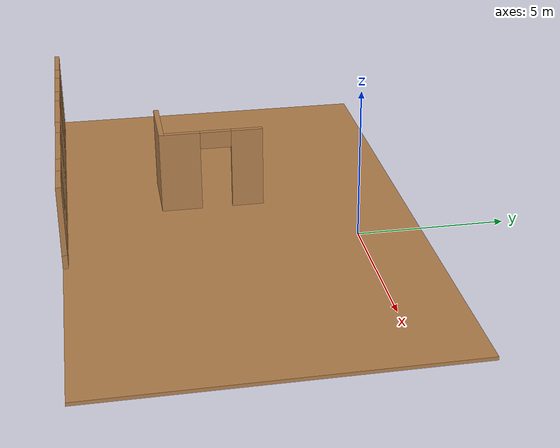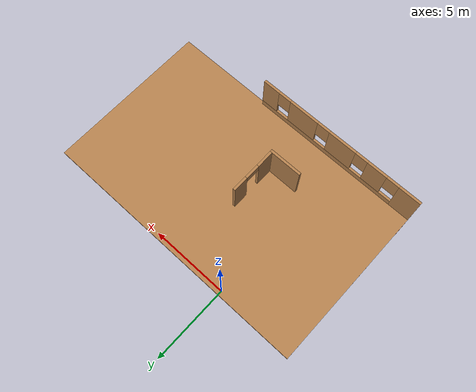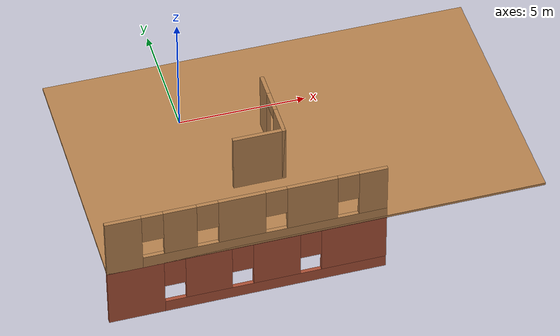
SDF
<sdf version="1.7">
 <model name="House">
  <pose>3.17663 -1.38106 0 0 -0 0</pose>
  <link name="Floor_0">
   <pose>0 -3.01679 2.5 0 -0 0</pose>
   <visual name="Floor_0_Visual_0">
    <pose>0 0 0.05 0 -0 0</pose>
    <geometry><box><size>16.6 10.05 0.1</size></box></geometry>
    <material>
     <script><uri>file://media/materials/scripts/gazebo.material</uri><name>Gazebo/Wood</name></script>
     <ambient>1 1 1 1</ambient>
    </material>
    <meta><layer>1</layer></meta>
   </visual>
   <collision name="Floor_0_Collision_0">
    <geometry><box><size>16.6 10.05 0.1</size></box></geometry>
    <pose>0 0 0.05 0 -0 0</pose>
   </collision>
  </link>
  <link name="Wall_23">
   <collision name="Wall_23_Collision">
    <geometry><box><size>2 0.15 2.5</size></box></geometry>
    <pose>0 0 1.25 0 -0 0</pose>
   </collision>
   <visual name="Wall_23_Visual">
    <pose>0 0 1.25 0 -0 0</pose>
    <geometry><box><size>2 0.15 2.5</size></box></geometry>
    <material>
     <script><uri>file://media/materials/scripts/gazebo.material</uri><name>Gazebo/Bricks</name></script>
     <ambient>1 1 1 1</ambient>
    </material>
    <meta><layer>0</layer></meta>
   </visual>
   <pose>-1.78479 -5.06341 0 0 -0 3.14159</pose>
  </link>
  <link name="Wall_26">
   <pose>-0.859791 -3.63841 0 0 -0 1.5708</pose>
   <visual name="Wall_26_Visual_0">
    <pose>-0.971236 0 1.25 0 -0 0</pose>
    <geometry><box><size>1.05753 0.15 2.5</size></box></geometry>
    <material>
     <script><uri>file://media/materials/scripts/gazebo.material</uri><name>Gazebo/Bricks</name></script>
     <ambient>1 1 1 1</ambient>
    </material>
    <meta><layer>0</layer></meta>
   </visual>
   <collision name="Wall_26_Collision_0">
    <geometry><box><size>1.05753 0.15 2.5</size></box></geometry>
    <pose>-0.971236 0 1.25 0 -0 0</pose>
   </collision>
   <visual name="Wall_26_Visual_1">
    <pose>0.978764 0 1.25 0 -0 0</pose>
    <geometry><box><size>1.04247 0.15 2.5</size></box></geometry>
    <material>
     <script><uri>file://media/materials/scripts/gazebo.material</uri><name>Gazebo/Bricks</name></script>
     <ambient>1 1 1 1</ambient>
    </material>
    <meta><layer>0</layer></meta>
   </visual>
   <collision name="Wall_26_Collision_1">
    <geometry><box><size>1.04247 0.15 2.5</size></box></geometry>
    <pose>0.978764 0 1.25 0 -0 0</pose>
   </collision>
   <visual name="Wall_26_Visual_2">
    <pose>0.007528 0 2.25 0 -0 0</pose>
    <geometry><box><size>0.9 0.15 0.5</size></box></geometry>
    <material>
     <script><uri>file://media/materials/scripts/gazebo.material</uri><name>Gazebo/Bricks</name></script>
     <ambient>1 1 1 1</ambient>
    </material>
    <meta><layer>0</layer></meta>
   </visual>
   <collision name="Wall_26_Collision_2">
    <geometry><box><size>0.9 0.15 0.5</size></box></geometry>
    <pose>0.007528 0 2.25 0 -0 0</pose>
   </collision>
  </link>
  <link name="Wall_29">
   <pose>-3.05 -7.96679 2.5 0 -0 0</pose>
   <visual name="Wall_29_Visual_0">
    <pose>-4.57538 0 1.25 0 -0 0</pose>
    <geometry><box><size>1.34924 0.15 2.5</size></box></geometry>
    <material>
     <script><uri>file://media/materials/scripts/gazebo.material</uri><name>Gazebo/Wood</name></script>
     <ambient>1 1 1 1</ambient>
    </material>
    <meta><layer>1</layer></meta>
   </visual>
   <collision name="Wall_29_Collision_0">
    <geometry><box><size>1.34924 0.15 2.5</size></box></geometry>
    <pose>-4.57538 0 1.25 0 -0 0</pose>
   </collision>
   <visual name="Wall_29_Visual_1">
    <pose>0.674619 0 0.25 0 -0 0</pose>
    <geometry><box><size>9.15076 0.15 0.5</size></box></geometry>
    <material>
     <script><uri>file://media/materials/scripts/gazebo.material</uri><name>Gazebo/Wood</name></script>
     <ambient>1 1 1 1</ambient>
    </material>
    <meta><layer>1</layer></meta>
   </visual>
   <collision name="Wall_29_Collision_1">
    <geometry><box><size>9.15076 0.15 0.5</size></box></geometry>
    <pose>0.674619 0 0.25 0 -0 0</pose>
   </collision>
   <visual name="Wall_29_Visual_2">
    <pose>-2.48503 0 1.5 0 -0 0</pose>
    <geometry><box><size>1.23147 0.15 2</size></box></geometry>
    <material>
     <script><uri>file://media/materials/scripts/gazebo.material</uri><name>Gazebo/Wood</name></script>
     <ambient>1 1 1 1</ambient>
    </material>
    <meta><layer>1</layer></meta>
   </visual>
   <collision name="Wall_29_Collision_2">
    <geometry><box><size>1.23147 0.15 2</size></box></geometry>
    <pose>-2.48503 0 1.5 0 -0 0</pose>
   </collision>
   <visual name="Wall_29_Visual_3">
    <pose>-0.192079 0 1.5 0 -0 0</pose>
    <geometry><box><size>1.75442 0.15 2</size></box></geometry>
    <material>
     <script><uri>file://media/materials/scripts/gazebo.material</uri><name>Gazebo/Wood</name></script>
     <ambient>1 1 1 1</ambient>
    </material>
    <meta><layer>1</layer></meta>
   </visual>
   <collision name="Wall_29_Collision_3">
    <geometry><box><size>1.75442 0.15 2</size></box></geometry>
    <pose>-0.192079 0 1.5 0 -0 0</pose>
   </collision>
   <visual name="Wall_29_Visual_4">
    <pose>2.43274 0 1.5 0 -0 0</pose>
    <geometry><box><size>1.89522 0.15 2</size></box></geometry>
    <material>
     <script><uri>file://media/materials/scripts/gazebo.material</uri><name>Gazebo/Wood</name></script>
     <ambient>1 1 1 1</ambient>
    </material>
    <meta><layer>1</layer></meta>
   </visual>
   <collision name="Wall_29_Collision_4">
    <geometry><box><size>1.89522 0.15 2</size></box></geometry>
    <pose>2.43274 0 1.5 0 -0 0</pose>
   </collision>
   <visual name="Wall_29_Visual_5">
    <pose>4.71518 0 1.5 0 -0 0</pose>
    <geometry><box><size>1.06965 0.15 2</size></box></geometry>
    <material>
     <script><uri>file://media/materials/scripts/gazebo.material</uri><name>Gazebo/Wood</name></script>
     <ambient>1 1 1 1</ambient>
    </material>
    <meta><layer>1</layer></meta>
   </visual>
   <collision name="Wall_29_Collision_5">
    <geometry><box><size>1.06965 0.15 2</size></box></geometry>
    <pose>4.71518 0 1.5 0 -0 0</pose>
   </collision>
   <visual name="Wall_29_Visual_6">
    <pose>-3.50076 0 1.9 0 -0 0</pose>
    <geometry><box><size>0.8 0.15 1.2</size></box></geometry>
    <material>
     <script><uri>file://media/materials/scripts/gazebo.material</uri><name>Gazebo/Wood</name></script>
     <ambient>1 1 1 1</ambient>
    </material>
    <meta><layer>1</layer></meta>
   </visual>
   <collision name="Wall_29_Collision_6">
    <geometry><box><size>0.8 0.15 1.2</size></box></geometry>
    <pose>-3.50076 0 1.9 0 -0 0</pose>
   </collision>
   <visual name="Wall_29_Visual_7">
    <pose>-1.46929 0 1.9 0 -0 0</pose>
    <geometry><box><size>0.8 0.15 1.2</size></box></geometry>
    <material>
     <script><uri>file://media/materials/scripts/gazebo.material</uri><name>Gazebo/Wood</name></script>
     <ambient>1 1 1 1</ambient>
    </material>
    <meta><layer>1</layer></meta>
   </visual>
   <collision name="Wall_29_Collision_7">
    <geometry><box><size>0.8 0.15 1.2</size></box></geometry>
    <pose>-1.46929 0 1.9 0 -0 0</pose>
   </collision>
   <visual name="Wall_29_Visual_8">
    <pose>1.08513 0 1.9 0 -0 0</pose>
    <geometry><box><size>0.8 0.15 1.2</size></box></geometry>
    <material>
     <script><uri>file://media/materials/scripts/gazebo.material</uri><name>Gazebo/Wood</name></script>
     <ambient>1 1 1 1</ambient>
    </material>
    <meta><layer>1</layer></meta>
   </visual>
   <collision name="Wall_29_Collision_8">
    <geometry><box><size>0.8 0.15 1.2</size></box></geometry>
    <pose>1.08513 0 1.9 0 -0 0</pose>
   </collision>
   <visual name="Wall_29_Visual_9">
    <pose>3.78035 0 1.9 0 -0 0</pose>
    <geometry><box><size>0.8 0.15 1.2</size></box></geometry>
    <material>
     <script><uri>file://media/materials/scripts/gazebo.material</uri><name>Gazebo/Wood</name></script>
     <ambient>1 1 1 1</ambient>
    </material>
    <meta><layer>1</layer></meta>
   </visual>
   <collision name="Wall_29_Collision_9">
    <geometry><box><size>0.8 0.15 1.2</size></box></geometry>
    <pose>3.78035 0 1.9 0 -0 0</pose>
   </collision>
  </link>
  <link name="Wall_3">
   <pose>-3.05 -7.96679 0 0 -0 0</pose>
   <visual name="Wall_3_Visual_0">
    <pose>-4.19103 0 1.25 0 -0 0</pose>
    <geometry><box><size>2.11794 0.15 2.5</size></box></geometry>
    <material>
     <script><uri>file://media/materials/scripts/gazebo.material</uri><name>Gazebo/Bricks</name></script>
     <ambient>1 0.764706 0.305882 1</ambient>
    </material>
    <meta><layer>0</layer></meta>
   </visual>
   <collision name="Wall_3_Collision_0">
    <geometry><box><size>2.11794 0.15 2.5</size></box></geometry>
    <pose>-4.19103 0 1.25 0 -0 0</pose>
   </collision>
   <visual name="Wall_3_Visual_1">
    <pose>1.05897 0 0.25 0 -0 0</pose>
    <geometry><box><size>8.38206 0.15 0.5</size></box></geometry>
    <material>
     <script><uri>file://media/materials/scripts/gazebo.material</uri><name>Gazebo/Bricks</name></script>
     <ambient>1 0.764706 0.305882 1</ambient>
    </material>
    <meta><layer>0</layer></meta>
   </visual>
   <collision name="Wall_3_Collision_1">
    <geometry><box><size>8.38206 0.15 0.5</size></box></geometry>
    <pose>1.05897 0 0.25 0 -0 0</pose>
   </collision>
   <visual name="Wall_3_Visual_2">
    <pose>-1.46213 0 1.5 0 -0 0</pose>
    <geometry><box><size>1.73986 0.15 2</size></box></geometry>
    <material>
     <script><uri>file://media/materials/scripts/gazebo.material</uri><name>Gazebo/Bricks</name></script>
     <ambient>1 0.764706 0.305882 1</ambient>
    </material>
    <meta><layer>0</layer></meta>
   </visual>
   <collision name="Wall_3_Collision_2">
    <geometry><box><size>1.73986 0.15 2</size></box></geometry>
    <pose>-1.46213 0 1.5 0 -0 0</pose>
   </collision>
   <visual name="Wall_3_Visual_3">
    <pose>1.09294 0 1.5 0 -0 0</pose>
    <geometry><box><size>1.77028 0.15 2</size></box></geometry>
    <material>
     <script><uri>file://media/materials/scripts/gazebo.material</uri><name>Gazebo/Bricks</name></script>
     <ambient>1 0.764706 0.305882 1</ambient>
    </material>
    <meta><layer>0</layer></meta>
   </visual>
   <collision name="Wall_3_Collision_3">
    <geometry><box><size>1.77028 0.15 2</size></box></geometry>
    <pose>1.09294 0 1.5 0 -0 0</pose>
   </collision>
   <visual name="Wall_3_Visual_4">
    <pose>4.01404 0 1.5 0 -0 0</pose>
    <geometry><box><size>2.47192 0.15 2</size></box></geometry>
    <material>
     <script><uri>file://media/materials/scripts/gazebo.material</uri><name>Gazebo/Bricks</name></script>
     <ambient>1 0.764706 0.305882 1</ambient>
    </material>
    <meta><layer>0</layer></meta>
   </visual>
   <collision name="Wall_3_Collision_4">
    <geometry><box><size>2.47192 0.15 2</size></box></geometry>
    <pose>4.01404 0 1.5 0 -0 0</pose>
   </collision>
   <visual name="Wall_3_Visual_5">
    <pose>-2.73206 0 1.9 0 -0 0</pose>
    <geometry><box><size>0.8 0.15 1.2</size></box></geometry>
    <material>
     <script><uri>file://media/materials/scripts/gazebo.material</uri><name>Gazebo/Bricks</name></script>
     <ambient>1 0.764706 0.305882 1</ambient>
    </material>
    <meta><layer>0</layer></meta>
   </visual>
   <collision name="Wall_3_Collision_5">
    <geometry><box><size>0.8 0.15 1.2</size></box></geometry>
    <pose>-2.73206 0 1.9 0 -0 0</pose>
   </collision>
   <visual name="Wall_3_Visual_6">
    <pose>-0.192201 0 1.9 0 -0 0</pose>
    <geometry><box><size>0.8 0.15 1.2</size></box></geometry>
    <material>
     <script><uri>file://media/materials/scripts/gazebo.material</uri><name>Gazebo/Bricks</name></script>
     <ambient>1 0.764706 0.305882 1</ambient>
    </material>
    <meta><layer>0</layer></meta>
   </visual>
   <collision name="Wall_3_Collision_6">
    <geometry><box><size>0.8 0.15 1.2</size></box></geometry>
    <pose>-0.192201 0 1.9 0 -0 0</pose>
   </collision>
   <visual name="Wall_3_Visual_7">
    <pose>2.37808 0 1.9 0 -0 0</pose>
    <geometry><box><size>0.8 0.15 1.2</size></box></geometry>
    <material>
     <script><uri>file://media/materials/scripts/gazebo.material</uri><name>Gazebo/Bricks</name></script>
     <ambient>1 0.764706 0.305882 1</ambient>
    </material>
    <meta><layer>0</layer></meta>
   </visual>
   <collision name="Wall_3_Collision_7">
    <geometry><box><size>0.8 0.15 1.2</size></box></geometry>
    <pose>2.37808 0 1.9 0 -0 0</pose>
   </collision>
  </link>
  <link name="Wall_44">
   <collision name="Wall_44_Collision">
    <geometry><box><size>2 0.15 2.5</size></box></geometry>
    <pose>0 0 1.25 0 -0 0</pose>
   </collision>
   <visual name="Wall_44_Visual">
    <pose>0 0 1.25 0 -0 0</pose>
    <geometry><box><size>2 0.15 2.5</size></box></geometry>
    <material>
     <script><uri>file://media/materials/scripts/gazebo.material</uri><name>Gazebo/Wood</name></script>
     <ambient>1 1 1 1</ambient>
    </material>
    <meta><layer>1</layer></meta>
   </visual>
   <pose>-1.78479 -5.06341 2.5 0 -0 3.14159</pose>
  </link>
  <link name="Wall_45">
   <pose>-0.859791 -3.63841 2.5 0 -0 1.5708</pose>
   <visual name="Wall_45_Visual_0">
    <pose>-0.90903 0 1.25 0 -0 0</pose>
    <geometry><box><size>1.18194 0.15 2.5</size></box></geometry>
    <material>
     <script><uri>file://media/materials/scripts/gazebo.material</uri><name>Gazebo/Wood</name></script>
     <ambient>1 1 1 1</ambient>
    </material>
    <meta><layer>1</layer></meta>
   </visual>
   <collision name="Wall_45_Collision_0">
    <geometry><box><size>1.18194 0.15 2.5</size></box></geometry>
    <pose>-0.90903 0 1.25 0 -0 0</pose>
   </collision>
   <visual name="Wall_45_Visual_1">
    <pose>1.04097 0 1.25 0 -0 0</pose>
    <geometry><box><size>0.918061 0.15 2.5</size></box></geometry>
    <material>
     <script><uri>file://media/materials/scripts/gazebo.material</uri><name>Gazebo/Wood</name></script>
     <ambient>1 1 1 1</ambient>
    </material>
    <meta><layer>1</layer></meta>
   </visual>
   <collision name="Wall_45_Collision_1">
    <geometry><box><size>0.918061 0.15 2.5</size></box></geometry>
    <pose>1.04097 0 1.25 0 -0 0</pose>
   </collision>
   <visual name="Wall_45_Visual_2">
    <pose>0.131939 0 2.25 0 -0 0</pose>
    <geometry><box><size>0.9 0.15 0.5</size></box></geometry>
    <material>
     <script><uri>file://media/materials/scripts/gazebo.material</uri><name>Gazebo/Wood</name></script>
     <ambient>1 1 1 1</ambient>
    </material>
    <meta><layer>1</layer></meta>
   </visual>
   <collision name="Wall_45_Collision_2">
    <geometry><box><size>0.9 0.15 0.5</size></box></geometry>
    <pose>0.131939 0 2.25 0 -0 0</pose>
   </collision>
  </link>
  <static>1</static>
 </model>
</sdf>
